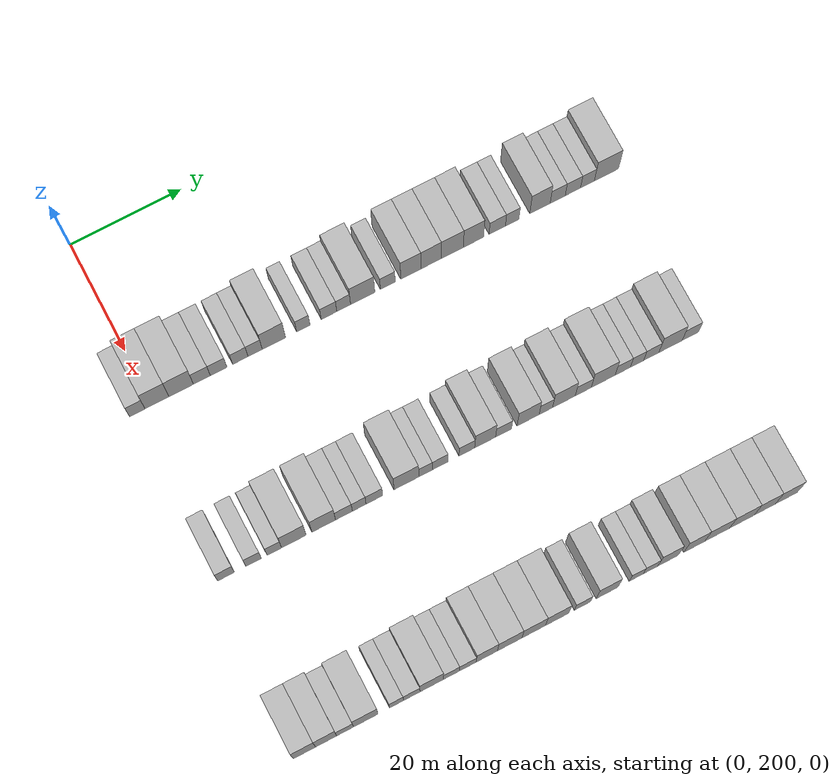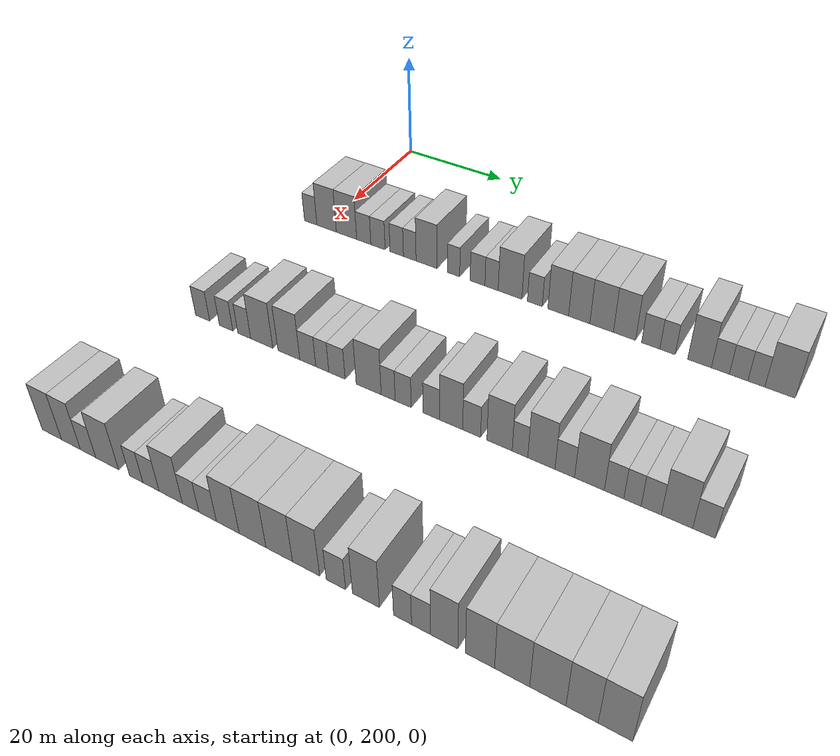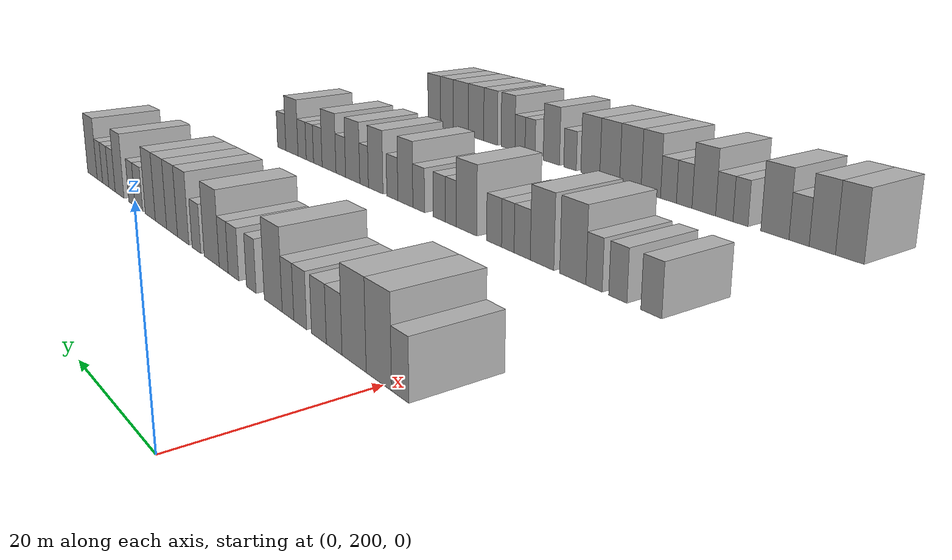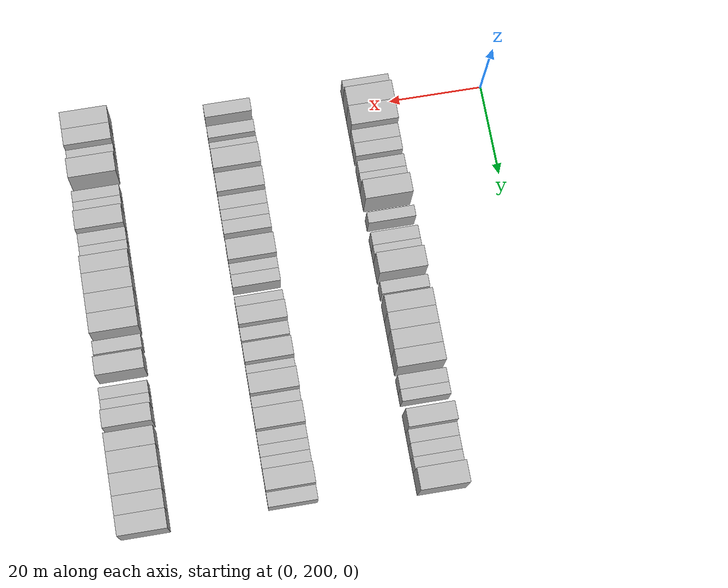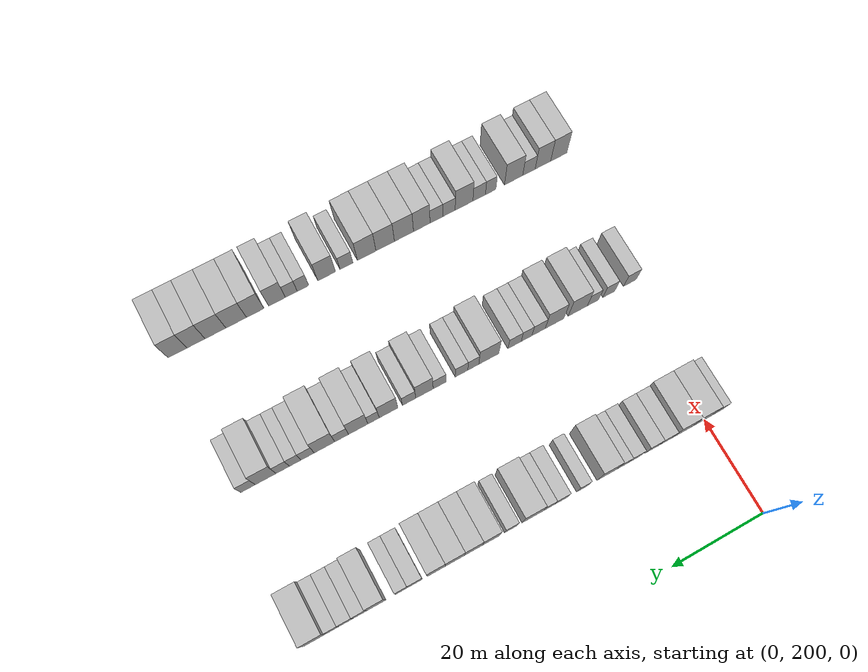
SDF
<sdf version="1.6">
 <world name="default">
  <model name="building_116">
   <static>1</static>
   <pose>25.0000 197.3269 0 0.000000 0.000000 0.000000</pose>
   <link name="link">
    <pose>0 0 3.00 0 0 0</pose>
    <collision name="collision"><geometry><box><size>10.0000 2.7400 6.0000</size></box></geometry></collision>
    <visual name="visual">
     <cast_shadows>0</cast_shadows>
     <geometry><box><size>10.0000 2.7400 6.0000</size></box></geometry>
     <material>
      <script>
       <uri>model://HANNAS_wall/materials/scripts</uri>
       <uri>model://HANNAS_wall/materials/textures</uri>
       <name>vrc/HANNAS_wall</name>
      </script>
     </material>
    </visual>
   </link>
  </model>
  <model name="building_117">
   <static>1</static>
   <pose>25.0000 200.8144 0 0.000000 0.000000 0.000000</pose>
   <link name="link">
    <pose>0 0 4.50 0 0 0</pose>
    <collision name="collision"><geometry><box><size>10.0000 4.2350 9.0000</size></box></geometry></collision>
    <visual name="visual">
     <cast_shadows>0</cast_shadows>
     <geometry><box><size>10.0000 4.2350 9.0000</size></box></geometry>
     <material>
      <script>
       <uri>model://HANNAS_wall/materials/scripts</uri>
       <uri>model://HANNAS_wall/materials/textures</uri>
       <name>vrc/HANNAS_wall</name>
      </script>
     </material>
    </visual>
   </link>
  </model>
  <model name="building_118">
   <static>1</static>
   <pose>25.0000 205.1041 0 0.000000 0.000000 0.000000</pose>
   <link name="link">
    <pose>0 0 4.50 0 0 0</pose>
    <collision name="collision"><geometry><box><size>10.0000 4.3445 9.0000</size></box></geometry></collision>
    <visual name="visual">
     <cast_shadows>0</cast_shadows>
     <geometry><box><size>10.0000 4.3445 9.0000</size></box></geometry>
     <material>
      <script>
       <uri>model://HANNAS_wall/materials/scripts</uri>
       <uri>model://HANNAS_wall/materials/textures</uri>
       <name>vrc/HANNAS_wall</name>
      </script>
     </material>
    </visual>
   </link>
  </model>
  <model name="building_119">
   <static>1</static>
   <pose>25.0000 208.7745 0 0.000000 0.000000 0.000000</pose>
   <link name="link">
    <pose>0 0 3.00 0 0 0</pose>
    <collision name="collision"><geometry><box><size>10.0000 2.9962 6.0000</size></box></geometry></collision>
    <visual name="visual">
     <cast_shadows>0</cast_shadows>
     <geometry><box><size>10.0000 2.9962 6.0000</size></box></geometry>
     <material>
      <script>
       <uri>model://HANNAS_wall/materials/scripts</uri>
       <uri>model://HANNAS_wall/materials/textures</uri>
       <name>vrc/HANNAS_wall</name>
      </script>
     </material>
    </visual>
   </link>
  </model>
  <model name="building_120">
   <static>1</static>
   <pose>25.0000 211.7584 0 0.000000 0.000000 0.000000</pose>
   <link name="link">
    <pose>0 0 3.00 0 0 0</pose>
    <collision name="collision"><geometry><box><size>10.0000 2.9716 6.0000</size></box></geometry></collision>
    <visual name="visual">
     <cast_shadows>0</cast_shadows>
     <geometry><box><size>10.0000 2.9716 6.0000</size></box></geometry>
     <material>
      <script>
       <uri>model://HANNAS_wall/materials/scripts</uri>
       <uri>model://HANNAS_wall/materials/textures</uri>
       <name>vrc/HANNAS_wall</name>
      </script>
     </material>
    </visual>
   </link>
  </model>
  <model name="building_121">
   <static>1</static>
   <pose>25.0000 215.6134 0 0.000000 0.000000 0.000000</pose>
   <link name="link">
    <pose>0 0 3.00 0 0 0</pose>
    <collision name="collision"><geometry><box><size>10.0000 2.7386 6.0000</size></box></geometry></collision>
    <visual name="visual">
     <cast_shadows>0</cast_shadows>
     <geometry><box><size>10.0000 2.7386 6.0000</size></box></geometry>
     <material>
      <script>
       <uri>model://HANNAS_wall/materials/scripts</uri>
       <uri>model://HANNAS_wall/materials/textures</uri>
       <name>vrc/HANNAS_wall</name>
      </script>
     </material>
    </visual>
   </link>
  </model>
  <model name="building_122">
   <static>1</static>
   <pose>25.0000 218.2609 0 0.000000 0.000000 0.000000</pose>
   <link name="link">
    <pose>0 0 3.00 0 0 0</pose>
    <collision name="collision"><geometry><box><size>10.0000 2.5562 6.0000</size></box></geometry></collision>
    <visual name="visual">
     <cast_shadows>0</cast_shadows>
     <geometry><box><size>10.0000 2.5562 6.0000</size></box></geometry>
     <material>
      <script>
       <uri>model://HANNAS_wall/materials/scripts</uri>
       <uri>model://HANNAS_wall/materials/textures</uri>
       <name>vrc/HANNAS_wall</name>
      </script>
     </material>
    </visual>
   </link>
  </model>
  <model name="building_123">
   <static>1</static>
   <pose>25.0000 221.6249 0 0.000000 0.000000 0.000000</pose>
   <link name="link">
    <pose>0 0 4.50 0 0 0</pose>
    <collision name="collision"><geometry><box><size>10.0000 4.1718 9.0000</size></box></geometry></collision>
    <visual name="visual">
     <cast_shadows>0</cast_shadows>
     <geometry><box><size>10.0000 4.1718 9.0000</size></box></geometry>
     <material>
      <script>
       <uri>model://HANNAS_wall/materials/scripts</uri>
       <uri>model://HANNAS_wall/materials/textures</uri>
       <name>vrc/HANNAS_wall</name>
      </script>
     </material>
    </visual>
   </link>
  </model>
  <model name="building_124">
   <static>1</static>
   <pose>25.0000 226.9164 0 0.000000 0.000000 0.000000</pose>
   <link name="link">
    <pose>0 0 3.00 0 0 0</pose>
    <collision name="collision"><geometry><box><size>10.0000 2.4112 6.0000</size></box></geometry></collision>
    <visual name="visual">
     <cast_shadows>0</cast_shadows>
     <geometry><box><size>10.0000 2.4112 6.0000</size></box></geometry>
     <material>
      <script>
       <uri>model://HANNAS_wall/materials/scripts</uri>
       <uri>model://HANNAS_wall/materials/textures</uri>
       <name>vrc/HANNAS_wall</name>
      </script>
     </material>
    </visual>
   </link>
  </model>
  <model name="building_125">
   <static>1</static>
   <pose>25.0000 231.5262 0 0.000000 0.000000 0.000000</pose>
   <link name="link">
    <pose>0 0 3.00 0 0 0</pose>
    <collision name="collision"><geometry><box><size>10.0000 2.8086 6.0000</size></box></geometry></collision>
    <visual name="visual">
     <cast_shadows>0</cast_shadows>
     <geometry><box><size>10.0000 2.8086 6.0000</size></box></geometry>
     <material>
      <script>
       <uri>model://HANNAS_wall/materials/scripts</uri>
       <uri>model://HANNAS_wall/materials/textures</uri>
       <name>vrc/HANNAS_wall</name>
      </script>
     </material>
    </visual>
   </link>
  </model>
  <model name="building_126">
   <static>1</static>
   <pose>25.0000 234.1750 0 0.000000 0.000000 0.000000</pose>
   <link name="link">
    <pose>0 0 3.00 0 0 0</pose>
    <collision name="collision"><geometry><box><size>10.0000 2.4891 6.0000</size></box></geometry></collision>
    <visual name="visual">
     <cast_shadows>0</cast_shadows>
     <geometry><box><size>10.0000 2.4891 6.0000</size></box></geometry>
     <material>
      <script>
       <uri>model://HANNAS_wall/materials/scripts</uri>
       <uri>model://HANNAS_wall/materials/textures</uri>
       <name>vrc/HANNAS_wall</name>
      </script>
     </material>
    </visual>
   </link>
  </model>
  <model name="building_127">
   <static>1</static>
   <pose>25.0000 237.6087 0 0.000000 0.000000 0.000000</pose>
   <link name="link">
    <pose>0 0 4.50 0 0 0</pose>
    <collision name="collision"><geometry><box><size>10.0000 4.3782 9.0000</size></box></geometry></collision>
    <visual name="visual">
     <cast_shadows>0</cast_shadows>
     <geometry><box><size>10.0000 4.3782 9.0000</size></box></geometry>
     <material>
      <script>
       <uri>model://HANNAS_wall/materials/scripts</uri>
       <uri>model://HANNAS_wall/materials/textures</uri>
       <name>vrc/HANNAS_wall</name>
      </script>
     </material>
    </visual>
   </link>
  </model>
  <model name="building_128">
   <static>1</static>
   <pose>25.0000 242.1433 0 0.000000 0.000000 0.000000</pose>
   <link name="link">
    <pose>0 0 3.00 0 0 0</pose>
    <collision name="collision"><geometry><box><size>10.0000 2.6910 6.0000</size></box></geometry></collision>
    <visual name="visual">
     <cast_shadows>0</cast_shadows>
     <geometry><box><size>10.0000 2.6910 6.0000</size></box></geometry>
     <material>
      <script>
       <uri>model://HANNAS_wall/materials/scripts</uri>
       <uri>model://HANNAS_wall/materials/textures</uri>
       <name>vrc/HANNAS_wall</name>
      </script>
     </material>
    </visual>
   </link>
  </model>
  <model name="building_129">
   <static>1</static>
   <pose>25.0000 246.3247 0 0.000000 0.000000 0.000000</pose>
   <link name="link">
    <pose>0 0 4.50 0 0 0</pose>
    <collision name="collision"><geometry><box><size>10.0000 3.6718 9.0000</size></box></geometry></collision>
    <visual name="visual">
     <cast_shadows>0</cast_shadows>
     <geometry><box><size>10.0000 3.6718 9.0000</size></box></geometry>
     <material>
      <script>
       <uri>model://HANNAS_wall/materials/scripts</uri>
       <uri>model://HANNAS_wall/materials/textures</uri>
       <name>vrc/HANNAS_wall</name>
      </script>
     </material>
    </visual>
   </link>
  </model>
  <model name="building_130">
   <static>1</static>
   <pose>25.0000 250.0073 0 0.000000 0.000000 0.000000</pose>
   <link name="link">
    <pose>0 0 4.50 0 0 0</pose>
    <collision name="collision"><geometry><box><size>10.0000 3.6933 9.0000</size></box></geometry></collision>
    <visual name="visual">
     <cast_shadows>0</cast_shadows>
     <geometry><box><size>10.0000 3.6933 9.0000</size></box></geometry>
     <material>
      <script>
       <uri>model://HANNAS_wall/materials/scripts</uri>
       <uri>model://HANNAS_wall/materials/textures</uri>
       <name>vrc/HANNAS_wall</name>
      </script>
     </material>
    </visual>
   </link>
  </model>
  <model name="building_131">
   <static>1</static>
   <pose>25.0000 253.8694 0 0.000000 0.000000 0.000000</pose>
   <link name="link">
    <pose>0 0 4.50 0 0 0</pose>
    <collision name="collision"><geometry><box><size>10.0000 4.0310 9.0000</size></box></geometry></collision>
    <visual name="visual">
     <cast_shadows>0</cast_shadows>
     <geometry><box><size>10.0000 4.0310 9.0000</size></box></geometry>
     <material>
      <script>
       <uri>model://HANNAS_wall/materials/scripts</uri>
       <uri>model://HANNAS_wall/materials/textures</uri>
       <name>vrc/HANNAS_wall</name>
      </script>
     </material>
    </visual>
   </link>
  </model>
  <model name="building_132">
   <static>1</static>
   <pose>25.0000 257.7401 0 0.000000 0.000000 0.000000</pose>
   <link name="link">
    <pose>0 0 4.50 0 0 0</pose>
    <collision name="collision"><geometry><box><size>10.0000 3.7102 9.0000</size></box></geometry></collision>
    <visual name="visual">
     <cast_shadows>0</cast_shadows>
     <geometry><box><size>10.0000 3.7102 9.0000</size></box></geometry>
     <material>
      <script>
       <uri>model://HANNAS_wall/materials/scripts</uri>
       <uri>model://HANNAS_wall/materials/textures</uri>
       <name>vrc/HANNAS_wall</name>
      </script>
     </material>
    </visual>
   </link>
  </model>
  <model name="building_133">
   <static>1</static>
   <pose>25.0000 262.0895 0 0.000000 0.000000 0.000000</pose>
   <link name="link">
    <pose>0 0 3.00 0 0 0</pose>
    <collision name="collision"><geometry><box><size>10.0000 2.9888 6.0000</size></box></geometry></collision>
    <visual name="visual">
     <cast_shadows>0</cast_shadows>
     <geometry><box><size>10.0000 2.9888 6.0000</size></box></geometry>
     <material>
      <script>
       <uri>model://HANNAS_wall/materials/scripts</uri>
       <uri>model://HANNAS_wall/materials/textures</uri>
       <name>vrc/HANNAS_wall</name>
      </script>
     </material>
    </visual>
   </link>
  </model>
  <model name="building_134">
   <static>1</static>
   <pose>25.0000 264.8251 0 0.000000 0.000000 0.000000</pose>
   <link name="link">
    <pose>0 0 3.00 0 0 0</pose>
    <collision name="collision"><geometry><box><size>10.0000 2.4822 6.0000</size></box></geometry></collision>
    <visual name="visual">
     <cast_shadows>0</cast_shadows>
     <geometry><box><size>10.0000 2.4822 6.0000</size></box></geometry>
     <material>
      <script>
       <uri>model://HANNAS_wall/materials/scripts</uri>
       <uri>model://HANNAS_wall/materials/textures</uri>
       <name>vrc/HANNAS_wall</name>
      </script>
     </material>
    </visual>
   </link>
  </model>
  <model name="building_135">
   <static>1</static>
   <pose>25.0000 269.9347 0 0.000000 0.000000 0.000000</pose>
   <link name="link">
    <pose>0 0 4.50 0 0 0</pose>
    <collision name="collision"><geometry><box><size>10.0000 3.7370 9.0000</size></box></geometry></collision>
    <visual name="visual">
     <cast_shadows>0</cast_shadows>
     <geometry><box><size>10.0000 3.7370 9.0000</size></box></geometry>
     <material>
      <script>
       <uri>model://HANNAS_wall/materials/scripts</uri>
       <uri>model://HANNAS_wall/materials/textures</uri>
       <name>vrc/HANNAS_wall</name>
      </script>
     </material>
    </visual>
   </link>
  </model>
  <model name="building_136">
   <static>1</static>
   <pose>25.0000 273.1979 0 0.000000 0.000000 0.000000</pose>
   <link name="link">
    <pose>0 0 3.00 0 0 0</pose>
    <collision name="collision"><geometry><box><size>10.0000 2.7896 6.0000</size></box></geometry></collision>
    <visual name="visual">
     <cast_shadows>0</cast_shadows>
     <geometry><box><size>10.0000 2.7896 6.0000</size></box></geometry>
     <material>
      <script>
       <uri>model://HANNAS_wall/materials/scripts</uri>
       <uri>model://HANNAS_wall/materials/textures</uri>
       <name>vrc/HANNAS_wall</name>
      </script>
     </material>
    </visual>
   </link>
  </model>
  <model name="building_137">
   <static>1</static>
   <pose>25.0000 276.0027 0 0.000000 0.000000 0.000000</pose>
   <link name="link">
    <pose>0 0 3.00 0 0 0</pose>
    <collision name="collision"><geometry><box><size>10.0000 2.8199 6.0000</size></box></geometry></collision>
    <visual name="visual">
     <cast_shadows>0</cast_shadows>
     <geometry><box><size>10.0000 2.8199 6.0000</size></box></geometry>
     <material>
      <script>
       <uri>model://HANNAS_wall/materials/scripts</uri>
       <uri>model://HANNAS_wall/materials/textures</uri>
       <name>vrc/HANNAS_wall</name>
      </script>
     </material>
    </visual>
   </link>
  </model>
  <model name="building_138">
   <static>1</static>
   <pose>25.0000 278.6916 0 0.000000 0.000000 0.000000</pose>
   <link name="link">
    <pose>0 0 3.00 0 0 0</pose>
    <collision name="collision"><geometry><box><size>10.0000 2.5580 6.0000</size></box></geometry></collision>
    <visual name="visual">
     <cast_shadows>0</cast_shadows>
     <geometry><box><size>10.0000 2.5580 6.0000</size></box></geometry>
     <material>
      <script>
       <uri>model://HANNAS_wall/materials/scripts</uri>
       <uri>model://HANNAS_wall/materials/textures</uri>
       <name>vrc/HANNAS_wall</name>
      </script>
     </material>
    </visual>
   </link>
  </model>
  <model name="building_139">
   <static>1</static>
   <pose>25.0000 282.2163 0 0.000000 0.000000 0.000000</pose>
   <link name="link">
    <pose>0 0 4.50 0 0 0</pose>
    <collision name="collision"><geometry><box><size>10.0000 4.4913 9.0000</size></box></geometry></collision>
    <visual name="visual">
     <cast_shadows>0</cast_shadows>
     <geometry><box><size>10.0000 4.4913 9.0000</size></box></geometry>
     <material>
      <script>
       <uri>model://HANNAS_wall/materials/scripts</uri>
       <uri>model://HANNAS_wall/materials/textures</uri>
       <name>vrc/HANNAS_wall</name>
      </script>
     </material>
    </visual>
   </link>
  </model>
  <model name="building_260">
   <static>1</static>
   <pose>55.0000 198.0064 0 0.000000 0.000000 0.000000</pose>
   <link name="link">
    <pose>0 0 3.00 0 0 0</pose>
    <collision name="collision"><geometry><box><size>10.0000 2.9197 6.0000</size></box></geometry></collision>
    <visual name="visual">
     <cast_shadows>0</cast_shadows>
     <geometry><box><size>10.0000 2.9197 6.0000</size></box></geometry>
     <material>
      <script>
       <uri>model://HANNAS_wall/materials/scripts</uri>
       <uri>model://HANNAS_wall/materials/textures</uri>
       <name>vrc/HANNAS_wall</name>
      </script>
     </material>
    </visual>
   </link>
  </model>
  <model name="building_261">
   <static>1</static>
   <pose>55.0000 202.8275 0 0.000000 0.000000 0.000000</pose>
   <link name="link">
    <pose>0 0 3.00 0 0 0</pose>
    <collision name="collision"><geometry><box><size>10.0000 2.7224 6.0000</size></box></geometry></collision>
    <visual name="visual">
     <cast_shadows>0</cast_shadows>
     <geometry><box><size>10.0000 2.7224 6.0000</size></box></geometry>
     <material>
      <script>
       <uri>model://HANNAS_wall/materials/scripts</uri>
       <uri>model://HANNAS_wall/materials/textures</uri>
       <name>vrc/HANNAS_wall</name>
      </script>
     </material>
    </visual>
   </link>
  </model>
  <model name="building_262">
   <static>1</static>
   <pose>55.0000 206.4628 0 0.000000 0.000000 0.000000</pose>
   <link name="link">
    <pose>0 0 3.00 0 0 0</pose>
    <collision name="collision"><geometry><box><size>10.0000 2.5482 6.0000</size></box></geometry></collision>
    <visual name="visual">
     <cast_shadows>0</cast_shadows>
     <geometry><box><size>10.0000 2.5482 6.0000</size></box></geometry>
     <material>
      <script>
       <uri>model://HANNAS_wall/materials/scripts</uri>
       <uri>model://HANNAS_wall/materials/textures</uri>
       <name>vrc/HANNAS_wall</name>
      </script>
     </material>
    </visual>
   </link>
  </model>
  <model name="building_263">
   <static>1</static>
   <pose>55.0000 209.9005 0 0.000000 0.000000 0.000000</pose>
   <link name="link">
    <pose>0 0 4.50 0 0 0</pose>
    <collision name="collision"><geometry><box><size>10.0000 4.3273 9.0000</size></box></geometry></collision>
    <visual name="visual">
     <cast_shadows>0</cast_shadows>
     <geometry><box><size>10.0000 4.3273 9.0000</size></box></geometry>
     <material>
      <script>
       <uri>model://HANNAS_wall/materials/scripts</uri>
       <uri>model://HANNAS_wall/materials/textures</uri>
       <name>vrc/HANNAS_wall</name>
      </script>
     </material>
    </visual>
   </link>
  </model>
  <model name="building_264">
   <static>1</static>
   <pose>55.0000 215.1498 0 0.000000 0.000000 0.000000</pose>
   <link name="link">
    <pose>0 0 4.50 0 0 0</pose>
    <collision name="collision"><geometry><box><size>10.0000 4.1712 9.0000</size></box></geometry></collision>
    <visual name="visual">
     <cast_shadows>0</cast_shadows>
     <geometry><box><size>10.0000 4.1712 9.0000</size></box></geometry>
     <material>
      <script>
       <uri>model://HANNAS_wall/materials/scripts</uri>
       <uri>model://HANNAS_wall/materials/textures</uri>
       <name>vrc/HANNAS_wall</name>
      </script>
     </material>
    </visual>
   </link>
  </model>
  <model name="building_265">
   <static>1</static>
   <pose>55.0000 218.7276 0 0.000000 0.000000 0.000000</pose>
   <link name="link">
    <pose>0 0 3.00 0 0 0</pose>
    <collision name="collision"><geometry><box><size>10.0000 2.9845 6.0000</size></box></geometry></collision>
    <visual name="visual">
     <cast_shadows>0</cast_shadows>
     <geometry><box><size>10.0000 2.9845 6.0000</size></box></geometry>
     <material>
      <script>
       <uri>model://HANNAS_wall/materials/scripts</uri>
       <uri>model://HANNAS_wall/materials/textures</uri>
       <name>vrc/HANNAS_wall</name>
      </script>
     </material>
    </visual>
   </link>
  </model>
  <model name="building_266">
   <static>1</static>
   <pose>55.0000 221.4217 0 0.000000 0.000000 0.000000</pose>
   <link name="link">
    <pose>0 0 3.00 0 0 0</pose>
    <collision name="collision"><geometry><box><size>10.0000 2.4036 6.0000</size></box></geometry></collision>
    <visual name="visual">
     <cast_shadows>0</cast_shadows>
     <geometry><box><size>10.0000 2.4036 6.0000</size></box></geometry>
     <material>
      <script>
       <uri>model://HANNAS_wall/materials/scripts</uri>
       <uri>model://HANNAS_wall/materials/textures</uri>
       <name>vrc/HANNAS_wall</name>
      </script>
     </material>
    </visual>
   </link>
  </model>
  <model name="building_267">
   <static>1</static>
   <pose>55.0000 224.1009 0 0.000000 0.000000 0.000000</pose>
   <link name="link">
    <pose>0 0 3.00 0 0 0</pose>
    <collision name="collision"><geometry><box><size>10.0000 2.9548 6.0000</size></box></geometry></collision>
    <visual name="visual">
     <cast_shadows>0</cast_shadows>
     <geometry><box><size>10.0000 2.9548 6.0000</size></box></geometry>
     <material>
      <script>
       <uri>model://HANNAS_wall/materials/scripts</uri>
       <uri>model://HANNAS_wall/materials/textures</uri>
       <name>vrc/HANNAS_wall</name>
      </script>
     </material>
    </visual>
   </link>
  </model>
  <model name="building_268">
   <static>1</static>
   <pose>55.0000 229.7860 0 0.000000 0.000000 0.000000</pose>
   <link name="link">
    <pose>0 0 4.50 0 0 0</pose>
    <collision name="collision"><geometry><box><size>10.0000 4.4153 9.0000</size></box></geometry></collision>
    <visual name="visual">
     <cast_shadows>0</cast_shadows>
     <geometry><box><size>10.0000 4.4153 9.0000</size></box></geometry>
     <material>
      <script>
       <uri>model://HANNAS_wall/materials/scripts</uri>
       <uri>model://HANNAS_wall/materials/textures</uri>
       <name>vrc/HANNAS_wall</name>
      </script>
     </material>
    </visual>
   </link>
  </model>
  <model name="building_269">
   <static>1</static>
   <pose>55.0000 233.2030 0 0.000000 0.000000 0.000000</pose>
   <link name="link">
    <pose>0 0 3.00 0 0 0</pose>
    <collision name="collision"><geometry><box><size>10.0000 2.4186 6.0000</size></box></geometry></collision>
    <visual name="visual">
     <cast_shadows>0</cast_shadows>
     <geometry><box><size>10.0000 2.4186 6.0000</size></box></geometry>
     <material>
      <script>
       <uri>model://HANNAS_wall/materials/scripts</uri>
       <uri>model://HANNAS_wall/materials/textures</uri>
       <name>vrc/HANNAS_wall</name>
      </script>
     </material>
    </visual>
   </link>
  </model>
  <model name="building_270">
   <static>1</static>
   <pose>55.0000 235.7871 0 0.000000 0.000000 0.000000</pose>
   <link name="link">
    <pose>0 0 3.00 0 0 0</pose>
    <collision name="collision"><geometry><box><size>10.0000 2.7497 6.0000</size></box></geometry></collision>
    <visual name="visual">
     <cast_shadows>0</cast_shadows>
     <geometry><box><size>10.0000 2.7497 6.0000</size></box></geometry>
     <material>
      <script>
       <uri>model://HANNAS_wall/materials/scripts</uri>
       <uri>model://HANNAS_wall/materials/textures</uri>
       <name>vrc/HANNAS_wall</name>
      </script>
     </material>
    </visual>
   </link>
  </model>
  <model name="building_271">
   <static>1</static>
   <pose>55.0000 240.5626 0 0.000000 0.000000 0.000000</pose>
   <link name="link">
    <pose>0 0 3.00 0 0 0</pose>
    <collision name="collision"><geometry><box><size>10.0000 2.8012 6.0000</size></box></geometry></collision>
    <visual name="visual">
     <cast_shadows>0</cast_shadows>
     <geometry><box><size>10.0000 2.8012 6.0000</size></box></geometry>
     <material>
      <script>
       <uri>model://HANNAS_wall/materials/scripts</uri>
       <uri>model://HANNAS_wall/materials/textures</uri>
       <name>vrc/HANNAS_wall</name>
      </script>
     </material>
    </visual>
   </link>
  </model>
  <model name="building_272">
   <static>1</static>
   <pose>55.0000 243.8365 0 0.000000 0.000000 0.000000</pose>
   <link name="link">
    <pose>0 0 4.50 0 0 0</pose>
    <collision name="collision"><geometry><box><size>10.0000 3.7467 9.0000</size></box></geometry></collision>
    <visual name="visual">
     <cast_shadows>0</cast_shadows>
     <geometry><box><size>10.0000 3.7467 9.0000</size></box></geometry>
     <material>
      <script>
       <uri>model://HANNAS_wall/materials/scripts</uri>
       <uri>model://HANNAS_wall/materials/textures</uri>
       <name>vrc/HANNAS_wall</name>
      </script>
     </material>
    </visual>
   </link>
  </model>
  <model name="building_273">
   <static>1</static>
   <pose>55.0000 247.1429 0 0.000000 0.000000 0.000000</pose>
   <link name="link">
    <pose>0 0 3.00 0 0 0</pose>
    <collision name="collision"><geometry><box><size>10.0000 2.8660 6.0000</size></box></geometry></collision>
    <visual name="visual">
     <cast_shadows>0</cast_shadows>
     <geometry><box><size>10.0000 2.8660 6.0000</size></box></geometry>
     <material>
      <script>
       <uri>model://HANNAS_wall/materials/scripts</uri>
       <uri>model://HANNAS_wall/materials/textures</uri>
       <name>vrc/HANNAS_wall</name>
      </script>
     </material>
    </visual>
   </link>
  </model>
  <model name="building_274">
   <static>1</static>
   <pose>55.0000 251.5616 0 0.000000 0.000000 0.000000</pose>
   <link name="link">
    <pose>0 0 4.50 0 0 0</pose>
    <collision name="collision"><geometry><box><size>10.0000 3.9715 9.0000</size></box></geometry></collision>
    <visual name="visual">
     <cast_shadows>0</cast_shadows>
     <geometry><box><size>10.0000 3.9715 9.0000</size></box></geometry>
     <material>
      <script>
       <uri>model://HANNAS_wall/materials/scripts</uri>
       <uri>model://HANNAS_wall/materials/textures</uri>
       <name>vrc/HANNAS_wall</name>
      </script>
     </material>
    </visual>
   </link>
  </model>
  <model name="building_275">
   <static>1</static>
   <pose>55.0000 254.7517 0 0.000000 0.000000 0.000000</pose>
   <link name="link">
    <pose>0 0 3.00 0 0 0</pose>
    <collision name="collision"><geometry><box><size>10.0000 2.4086 6.0000</size></box></geometry></collision>
    <visual name="visual">
     <cast_shadows>0</cast_shadows>
     <geometry><box><size>10.0000 2.4086 6.0000</size></box></geometry>
     <material>
      <script>
       <uri>model://HANNAS_wall/materials/scripts</uri>
       <uri>model://HANNAS_wall/materials/textures</uri>
       <name>vrc/HANNAS_wall</name>
      </script>
     </material>
    </visual>
   </link>
  </model>
  <model name="building_276">
   <static>1</static>
   <pose>55.0000 258.0164 0 0.000000 0.000000 0.000000</pose>
   <link name="link">
    <pose>0 0 4.50 0 0 0</pose>
    <collision name="collision"><geometry><box><size>10.0000 4.1207 9.0000</size></box></geometry></collision>
    <visual name="visual">
     <cast_shadows>0</cast_shadows>
     <geometry><box><size>10.0000 4.1207 9.0000</size></box></geometry>
     <material>
      <script>
       <uri>model://HANNAS_wall/materials/scripts</uri>
       <uri>model://HANNAS_wall/materials/textures</uri>
       <name>vrc/HANNAS_wall</name>
      </script>
     </material>
    </visual>
   </link>
  </model>
  <model name="building_277">
   <static>1</static>
   <pose>55.0000 261.5257 0 0.000000 0.000000 0.000000</pose>
   <link name="link">
    <pose>0 0 3.00 0 0 0</pose>
    <collision name="collision"><geometry><box><size>10.0000 2.8980 6.0000</size></box></geometry></collision>
    <visual name="visual">
     <cast_shadows>0</cast_shadows>
     <geometry><box><size>10.0000 2.8980 6.0000</size></box></geometry>
     <material>
      <script>
       <uri>model://HANNAS_wall/materials/scripts</uri>
       <uri>model://HANNAS_wall/materials/textures</uri>
       <name>vrc/HANNAS_wall</name>
      </script>
     </material>
    </visual>
   </link>
  </model>
  <model name="building_278">
   <static>1</static>
   <pose>55.0000 265.1425 0 0.000000 0.000000 0.000000</pose>
   <link name="link">
    <pose>0 0 4.50 0 0 0</pose>
    <collision name="collision"><geometry><box><size>10.0000 4.3356 9.0000</size></box></geometry></collision>
    <visual name="visual">
     <cast_shadows>0</cast_shadows>
     <geometry><box><size>10.0000 4.3356 9.0000</size></box></geometry>
     <material>
      <script>
       <uri>model://HANNAS_wall/materials/scripts</uri>
       <uri>model://HANNAS_wall/materials/textures</uri>
       <name>vrc/HANNAS_wall</name>
      </script>
     </material>
    </visual>
   </link>
  </model>
  <model name="building_279">
   <static>1</static>
   <pose>55.0000 268.6959 0 0.000000 0.000000 0.000000</pose>
   <link name="link">
    <pose>0 0 3.00 0 0 0</pose>
    <collision name="collision"><geometry><box><size>10.0000 2.7710 6.0000</size></box></geometry></collision>
    <visual name="visual">
     <cast_shadows>0</cast_shadows>
     <geometry><box><size>10.0000 2.7710 6.0000</size></box></geometry>
     <material>
      <script>
       <uri>model://HANNAS_wall/materials/scripts</uri>
       <uri>model://HANNAS_wall/materials/textures</uri>
       <name>vrc/HANNAS_wall</name>
      </script>
     </material>
    </visual>
   </link>
  </model>
  <model name="building_280">
   <static>1</static>
   <pose>55.0000 271.2889 0 0.000000 0.000000 0.000000</pose>
   <link name="link">
    <pose>0 0 3.00 0 0 0</pose>
    <collision name="collision"><geometry><box><size>10.0000 2.4151 6.0000</size></box></geometry></collision>
    <visual name="visual">
     <cast_shadows>0</cast_shadows>
     <geometry><box><size>10.0000 2.4151 6.0000</size></box></geometry>
     <material>
      <script>
       <uri>model://HANNAS_wall/materials/scripts</uri>
       <uri>model://HANNAS_wall/materials/textures</uri>
       <name>vrc/HANNAS_wall</name>
      </script>
     </material>
    </visual>
   </link>
  </model>
  <model name="building_281">
   <static>1</static>
   <pose>55.0000 273.8853 0 0.000000 0.000000 0.000000</pose>
   <link name="link">
    <pose>0 0 3.00 0 0 0</pose>
    <collision name="collision"><geometry><box><size>10.0000 2.7777 6.0000</size></box></geometry></collision>
    <visual name="visual">
     <cast_shadows>0</cast_shadows>
     <geometry><box><size>10.0000 2.7777 6.0000</size></box></geometry>
     <material>
      <script>
       <uri>model://HANNAS_wall/materials/scripts</uri>
       <uri>model://HANNAS_wall/materials/textures</uri>
       <name>vrc/HANNAS_wall</name>
      </script>
     </material>
    </visual>
   </link>
  </model>
  <model name="building_282">
   <static>1</static>
   <pose>55.0000 277.4100 0 0.000000 0.000000 0.000000</pose>
   <link name="link">
    <pose>0 0 4.50 0 0 0</pose>
    <collision name="collision"><geometry><box><size>10.0000 4.2717 9.0000</size></box></geometry></collision>
    <visual name="visual">
     <cast_shadows>0</cast_shadows>
     <geometry><box><size>10.0000 4.2717 9.0000</size></box></geometry>
     <material>
      <script>
       <uri>model://HANNAS_wall/materials/scripts</uri>
       <uri>model://HANNAS_wall/materials/textures</uri>
       <name>vrc/HANNAS_wall</name>
      </script>
     </material>
    </visual>
   </link>
  </model>
  <model name="building_283">
   <static>1</static>
   <pose>55.0000 281.0414 0 0.000000 0.000000 0.000000</pose>
   <link name="link">
    <pose>0 0 3.00 0 0 0</pose>
    <collision name="collision"><geometry><box><size>10.0000 2.9911 6.0000</size></box></geometry></collision>
    <visual name="visual">
     <cast_shadows>0</cast_shadows>
     <geometry><box><size>10.0000 2.9911 6.0000</size></box></geometry>
     <material>
      <script>
       <uri>model://HANNAS_wall/materials/scripts</uri>
       <uri>model://HANNAS_wall/materials/textures</uri>
       <name>vrc/HANNAS_wall</name>
      </script>
     </material>
    </visual>
   </link>
  </model>
  <model name="building_404">
   <static>1</static>
   <pose>85.0000 196.4232 0 0.000000 0.000000 0.000000</pose>
   <link name="link">
    <pose>0 0 4.50 0 0 0</pose>
    <collision name="collision"><geometry><box><size>10.0000 3.8032 9.0000</size></box></geometry></collision>
    <visual name="visual">
     <cast_shadows>0</cast_shadows>
     <geometry><box><size>10.0000 3.8032 9.0000</size></box></geometry>
     <material>
      <script>
       <uri>model://HANNAS_wall/materials/scripts</uri>
       <uri>model://HANNAS_wall/materials/textures</uri>
       <name>vrc/HANNAS_wall</name>
      </script>
     </material>
    </visual>
   </link>
  </model>
  <model name="building_405">
   <static>1</static>
   <pose>85.0000 200.1460 0 0.000000 0.000000 0.000000</pose>
   <link name="link">
    <pose>0 0 4.50 0 0 0</pose>
    <collision name="collision"><geometry><box><size>10.0000 3.6425 9.0000</size></box></geometry></collision>
    <visual name="visual">
     <cast_shadows>0</cast_shadows>
     <geometry><box><size>10.0000 3.6425 9.0000</size></box></geometry>
     <material>
      <script>
       <uri>model://HANNAS_wall/materials/scripts</uri>
       <uri>model://HANNAS_wall/materials/textures</uri>
       <name>vrc/HANNAS_wall</name>
      </script>
     </material>
    </visual>
   </link>
  </model>
  <model name="building_406">
   <static>1</static>
   <pose>85.0000 203.4241 0 0.000000 0.000000 0.000000</pose>
   <link name="link">
    <pose>0 0 3.00 0 0 0</pose>
    <collision name="collision"><geometry><box><size>10.0000 2.9136 6.0000</size></box></geometry></collision>
    <visual name="visual">
     <cast_shadows>0</cast_shadows>
     <geometry><box><size>10.0000 2.9136 6.0000</size></box></geometry>
     <material>
      <script>
       <uri>model://HANNAS_wall/materials/scripts</uri>
       <uri>model://HANNAS_wall/materials/textures</uri>
       <name>vrc/HANNAS_wall</name>
      </script>
     </material>
    </visual>
   </link>
  </model>
  <model name="building_407">
   <static>1</static>
   <pose>85.0000 207.0039 0 0.000000 0.000000 0.000000</pose>
   <link name="link">
    <pose>0 0 4.50 0 0 0</pose>
    <collision name="collision"><geometry><box><size>10.0000 4.2459 9.0000</size></box></geometry></collision>
    <visual name="visual">
     <cast_shadows>0</cast_shadows>
     <geometry><box><size>10.0000 4.2459 9.0000</size></box></geometry>
     <material>
      <script>
       <uri>model://HANNAS_wall/materials/scripts</uri>
       <uri>model://HANNAS_wall/materials/textures</uri>
       <name>vrc/HANNAS_wall</name>
      </script>
     </material>
    </visual>
   </link>
  </model>
  <model name="building_408">
   <static>1</static>
   <pose>85.0000 212.3316 0 0.000000 0.000000 0.000000</pose>
   <link name="link">
    <pose>0 0 3.00 0 0 0</pose>
    <collision name="collision"><geometry><box><size>10.0000 2.4097 6.0000</size></box></geometry></collision>
    <visual name="visual">
     <cast_shadows>0</cast_shadows>
     <geometry><box><size>10.0000 2.4097 6.0000</size></box></geometry>
     <material>
      <script>
       <uri>model://HANNAS_wall/materials/scripts</uri>
       <uri>model://HANNAS_wall/materials/textures</uri>
       <name>vrc/HANNAS_wall</name>
      </script>
     </material>
    </visual>
   </link>
  </model>
  <model name="building_409">
   <static>1</static>
   <pose>85.0000 214.9812 0 0.000000 0.000000 0.000000</pose>
   <link name="link">
    <pose>0 0 3.00 0 0 0</pose>
    <collision name="collision"><geometry><box><size>10.0000 2.8895 6.0000</size></box></geometry></collision>
    <visual name="visual">
     <cast_shadows>0</cast_shadows>
     <geometry><box><size>10.0000 2.8895 6.0000</size></box></geometry>
     <material>
      <script>
       <uri>model://HANNAS_wall/materials/scripts</uri>
       <uri>model://HANNAS_wall/materials/textures</uri>
       <name>vrc/HANNAS_wall</name>
      </script>
     </material>
    </visual>
   </link>
  </model>
  <model name="building_410">
   <static>1</static>
   <pose>85.0000 218.4606 0 0.000000 0.000000 0.000000</pose>
   <link name="link">
    <pose>0 0 4.50 0 0 0</pose>
    <collision name="collision"><geometry><box><size>10.0000 4.0693 9.0000</size></box></geometry></collision>
    <visual name="visual">
     <cast_shadows>0</cast_shadows>
     <geometry><box><size>10.0000 4.0693 9.0000</size></box></geometry>
     <material>
      <script>
       <uri>model://HANNAS_wall/materials/scripts</uri>
       <uri>model://HANNAS_wall/materials/textures</uri>
       <name>vrc/HANNAS_wall</name>
      </script>
     </material>
    </visual>
   </link>
  </model>
  <model name="building_411">
   <static>1</static>
   <pose>85.0000 221.8973 0 0.000000 0.000000 0.000000</pose>
   <link name="link">
    <pose>0 0 3.00 0 0 0</pose>
    <collision name="collision"><geometry><box><size>10.0000 2.8041 6.0000</size></box></geometry></collision>
    <visual name="visual">
     <cast_shadows>0</cast_shadows>
     <geometry><box><size>10.0000 2.8041 6.0000</size></box></geometry>
     <material>
      <script>
       <uri>model://HANNAS_wall/materials/scripts</uri>
       <uri>model://HANNAS_wall/materials/textures</uri>
       <name>vrc/HANNAS_wall</name>
      </script>
     </material>
    </visual>
   </link>
  </model>
  <model name="building_412">
   <static>1</static>
   <pose>85.0000 224.7643 0 0.000000 0.000000 0.000000</pose>
   <link name="link">
    <pose>0 0 3.00 0 0 0</pose>
    <collision name="collision"><geometry><box><size>10.0000 2.9298 6.0000</size></box></geometry></collision>
    <visual name="visual">
     <cast_shadows>0</cast_shadows>
     <geometry><box><size>10.0000 2.9298 6.0000</size></box></geometry>
     <material>
      <script>
       <uri>model://HANNAS_wall/materials/scripts</uri>
       <uri>model://HANNAS_wall/materials/textures</uri>
       <name>vrc/HANNAS_wall</name>
      </script>
     </material>
    </visual>
   </link>
  </model>
  <model name="building_413">
   <static>1</static>
   <pose>85.0000 228.1029 0 0.000000 0.000000 0.000000</pose>
   <link name="link">
    <pose>0 0 4.50 0 0 0</pose>
    <collision name="collision"><geometry><box><size>10.0000 3.7473 9.0000</size></box></geometry></collision>
    <visual name="visual">
     <cast_shadows>0</cast_shadows>
     <geometry><box><size>10.0000 3.7473 9.0000</size></box></geometry>
     <material>
      <script>
       <uri>model://HANNAS_wall/materials/scripts</uri>
       <uri>model://HANNAS_wall/materials/textures</uri>
       <name>vrc/HANNAS_wall</name>
      </script>
     </material>
    </visual>
   </link>
  </model>
  <model name="building_414">
   <static>1</static>
   <pose>85.0000 232.1267 0 0.000000 0.000000 0.000000</pose>
   <link name="link">
    <pose>0 0 4.50 0 0 0</pose>
    <collision name="collision"><geometry><box><size>10.0000 4.3005 9.0000</size></box></geometry></collision>
    <visual name="visual">
     <cast_shadows>0</cast_shadows>
     <geometry><box><size>10.0000 4.3005 9.0000</size></box></geometry>
     <material>
      <script>
       <uri>model://HANNAS_wall/materials/scripts</uri>
       <uri>model://HANNAS_wall/materials/textures</uri>
       <name>vrc/HANNAS_wall</name>
      </script>
     </material>
    </visual>
   </link>
  </model>
  <model name="building_415">
   <static>1</static>
   <pose>85.0000 236.3525 0 0.000000 0.000000 0.000000</pose>
   <link name="link">
    <pose>0 0 4.50 0 0 0</pose>
    <collision name="collision"><geometry><box><size>10.0000 4.1510 9.0000</size></box></geometry></collision>
    <visual name="visual">
     <cast_shadows>0</cast_shadows>
     <geometry><box><size>10.0000 4.1510 9.0000</size></box></geometry>
     <material>
      <script>
       <uri>model://HANNAS_wall/materials/scripts</uri>
       <uri>model://HANNAS_wall/materials/textures</uri>
       <name>vrc/HANNAS_wall</name>
      </script>
     </material>
    </visual>
   </link>
  </model>
  <model name="building_416">
   <static>1</static>
   <pose>85.0000 240.4935 0 0.000000 0.000000 0.000000</pose>
   <link name="link">
    <pose>0 0 4.50 0 0 0</pose>
    <collision name="collision"><geometry><box><size>10.0000 4.1309 9.0000</size></box></geometry></collision>
    <visual name="visual">
     <cast_shadows>0</cast_shadows>
     <geometry><box><size>10.0000 4.1309 9.0000</size></box></geometry>
     <material>
      <script>
       <uri>model://HANNAS_wall/materials/scripts</uri>
       <uri>model://HANNAS_wall/materials/textures</uri>
       <name>vrc/HANNAS_wall</name>
      </script>
     </material>
    </visual>
   </link>
  </model>
  <model name="building_417">
   <static>1</static>
   <pose>85.0000 244.9902 0 0.000000 0.000000 0.000000</pose>
   <link name="link">
    <pose>0 0 3.00 0 0 0</pose>
    <collision name="collision"><geometry><box><size>10.0000 2.8626 6.0000</size></box></geometry></collision>
    <visual name="visual">
     <cast_shadows>0</cast_shadows>
     <geometry><box><size>10.0000 2.8626 6.0000</size></box></geometry>
     <material>
      <script>
       <uri>model://HANNAS_wall/materials/scripts</uri>
       <uri>model://HANNAS_wall/materials/textures</uri>
       <name>vrc/HANNAS_wall</name>
      </script>
     </material>
    </visual>
   </link>
  </model>
  <model name="building_418">
   <static>1</static>
   <pose>85.0000 249.3618 0 0.000000 0.000000 0.000000</pose>
   <link name="link">
    <pose>0 0 4.50 0 0 0</pose>
    <collision name="collision"><geometry><box><size>10.0000 3.8806 9.0000</size></box></geometry></collision>
    <visual name="visual">
     <cast_shadows>0</cast_shadows>
     <geometry><box><size>10.0000 3.8806 9.0000</size></box></geometry>
     <material>
      <script>
       <uri>model://HANNAS_wall/materials/scripts</uri>
       <uri>model://HANNAS_wall/materials/textures</uri>
       <name>vrc/HANNAS_wall</name>
      </script>
     </material>
    </visual>
   </link>
  </model>
  <model name="building_419">
   <static>1</static>
   <pose>85.0000 254.5528 0 0.000000 0.000000 0.000000</pose>
   <link name="link">
    <pose>0 0 3.00 0 0 0</pose>
    <collision name="collision"><geometry><box><size>10.0000 2.5013 6.0000</size></box></geometry></collision>
    <visual name="visual">
     <cast_shadows>0</cast_shadows>
     <geometry><box><size>10.0000 2.5013 6.0000</size></box></geometry>
     <material>
      <script>
       <uri>model://HANNAS_wall/materials/scripts</uri>
       <uri>model://HANNAS_wall/materials/textures</uri>
       <name>vrc/HANNAS_wall</name>
      </script>
     </material>
    </visual>
   </link>
  </model>
  <model name="building_420">
   <static>1</static>
   <pose>85.0000 257.1000 0 0.000000 0.000000 0.000000</pose>
   <link name="link">
    <pose>0 0 3.00 0 0 0</pose>
    <collision name="collision"><geometry><box><size>10.0000 2.5931 6.0000</size></box></geometry></collision>
    <visual name="visual">
     <cast_shadows>0</cast_shadows>
     <geometry><box><size>10.0000 2.5931 6.0000</size></box></geometry>
     <material>
      <script>
       <uri>model://HANNAS_wall/materials/scripts</uri>
       <uri>model://HANNAS_wall/materials/textures</uri>
       <name>vrc/HANNAS_wall</name>
      </script>
     </material>
    </visual>
   </link>
  </model>
  <model name="building_421">
   <static>1</static>
   <pose>85.0000 260.2248 0 0.000000 0.000000 0.000000</pose>
   <link name="link">
    <pose>0 0 4.50 0 0 0</pose>
    <collision name="collision"><geometry><box><size>10.0000 3.6566 9.0000</size></box></geometry></collision>
    <visual name="visual">
     <cast_shadows>0</cast_shadows>
     <geometry><box><size>10.0000 3.6566 9.0000</size></box></geometry>
     <material>
      <script>
       <uri>model://HANNAS_wall/materials/scripts</uri>
       <uri>model://HANNAS_wall/materials/textures</uri>
       <name>vrc/HANNAS_wall</name>
      </script>
     </material>
    </visual>
   </link>
  </model>
  <model name="building_422">
   <static>1</static>
   <pose>85.0000 264.9430 0 0.000000 0.000000 0.000000</pose>
   <link name="link">
    <pose>0 0 4.50 0 0 0</pose>
    <collision name="collision"><geometry><box><size>10.0000 3.7799 9.0000</size></box></geometry></collision>
    <visual name="visual">
     <cast_shadows>0</cast_shadows>
     <geometry><box><size>10.0000 3.7799 9.0000</size></box></geometry>
     <material>
      <script>
       <uri>model://HANNAS_wall/materials/scripts</uri>
       <uri>model://HANNAS_wall/materials/textures</uri>
       <name>vrc/HANNAS_wall</name>
      </script>
     </material>
    </visual>
   </link>
  </model>
  <model name="building_423">
   <static>1</static>
   <pose>85.0000 269.0473 0 0.000000 0.000000 0.000000</pose>
   <link name="link">
    <pose>0 0 4.50 0 0 0</pose>
    <collision name="collision"><geometry><box><size>10.0000 4.4285 9.0000</size></box></geometry></collision>
    <visual name="visual">
     <cast_shadows>0</cast_shadows>
     <geometry><box><size>10.0000 4.4285 9.0000</size></box></geometry>
     <material>
      <script>
       <uri>model://HANNAS_wall/materials/scripts</uri>
       <uri>model://HANNAS_wall/materials/textures</uri>
       <name>vrc/HANNAS_wall</name>
      </script>
     </material>
    </visual>
   </link>
  </model>
  <model name="building_424">
   <static>1</static>
   <pose>85.0000 273.4828 0 0.000000 0.000000 0.000000</pose>
   <link name="link">
    <pose>0 0 4.50 0 0 0</pose>
    <collision name="collision"><geometry><box><size>10.0000 4.4426 9.0000</size></box></geometry></collision>
    <visual name="visual">
     <cast_shadows>0</cast_shadows>
     <geometry><box><size>10.0000 4.4426 9.0000</size></box></geometry>
     <material>
      <script>
       <uri>model://HANNAS_wall/materials/scripts</uri>
       <uri>model://HANNAS_wall/materials/textures</uri>
       <name>vrc/HANNAS_wall</name>
      </script>
     </material>
    </visual>
   </link>
  </model>
  <model name="building_425">
   <static>1</static>
   <pose>85.0000 277.6208 0 0.000000 0.000000 0.000000</pose>
   <link name="link">
    <pose>0 0 4.50 0 0 0</pose>
    <collision name="collision"><geometry><box><size>10.0000 3.8332 9.0000</size></box></geometry></collision>
    <visual name="visual">
     <cast_shadows>0</cast_shadows>
     <geometry><box><size>10.0000 3.8332 9.0000</size></box></geometry>
     <material>
      <script>
       <uri>model://HANNAS_wall/materials/scripts</uri>
       <uri>model://HANNAS_wall/materials/textures</uri>
       <name>vrc/HANNAS_wall</name>
      </script>
     </material>
    </visual>
   </link>
  </model>
  <model name="building_426">
   <static>1</static>
   <pose>85.0000 281.5404 0 0.000000 0.000000 0.000000</pose>
   <link name="link">
    <pose>0 0 4.50 0 0 0</pose>
    <collision name="collision"><geometry><box><size>10.0000 4.0061 9.0000</size></box></geometry></collision>
    <visual name="visual">
     <cast_shadows>0</cast_shadows>
     <geometry><box><size>10.0000 4.0061 9.0000</size></box></geometry>
     <material>
      <script>
       <uri>model://HANNAS_wall/materials/scripts</uri>
       <uri>model://HANNAS_wall/materials/textures</uri>
       <name>vrc/HANNAS_wall</name>
      </script>
     </material>
    </visual>
   </link>
  </model>
 </world>
</sdf>
